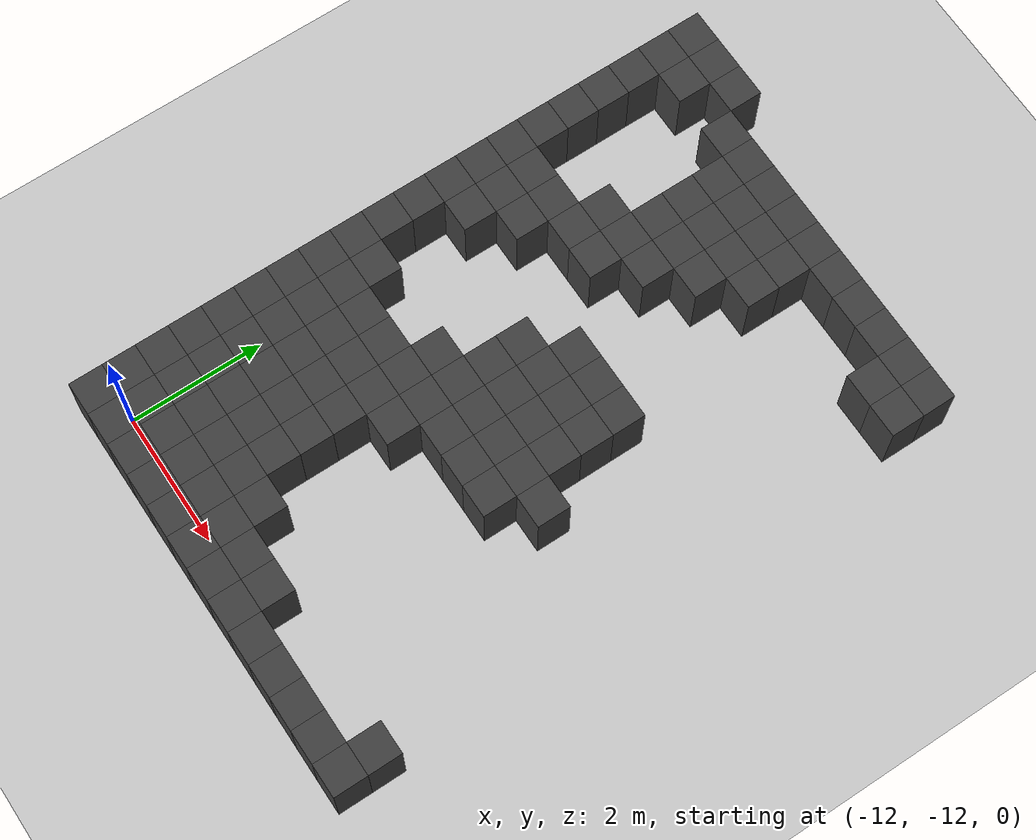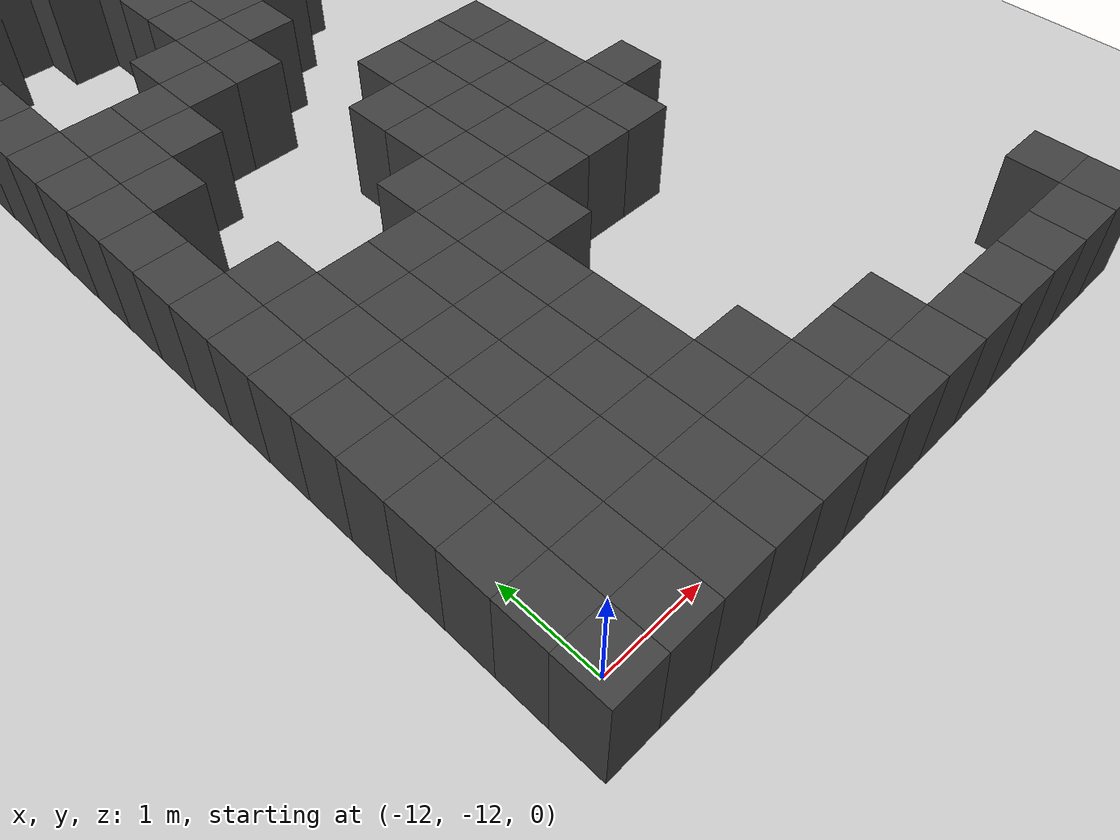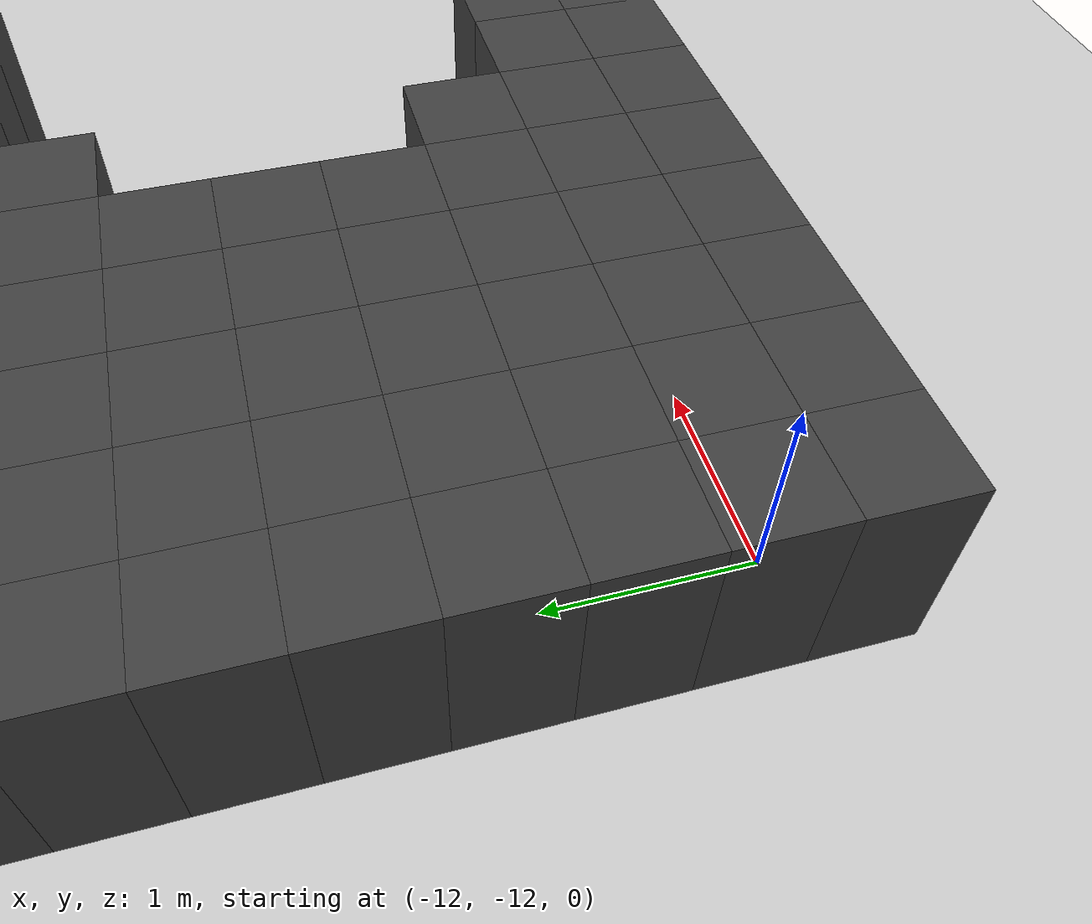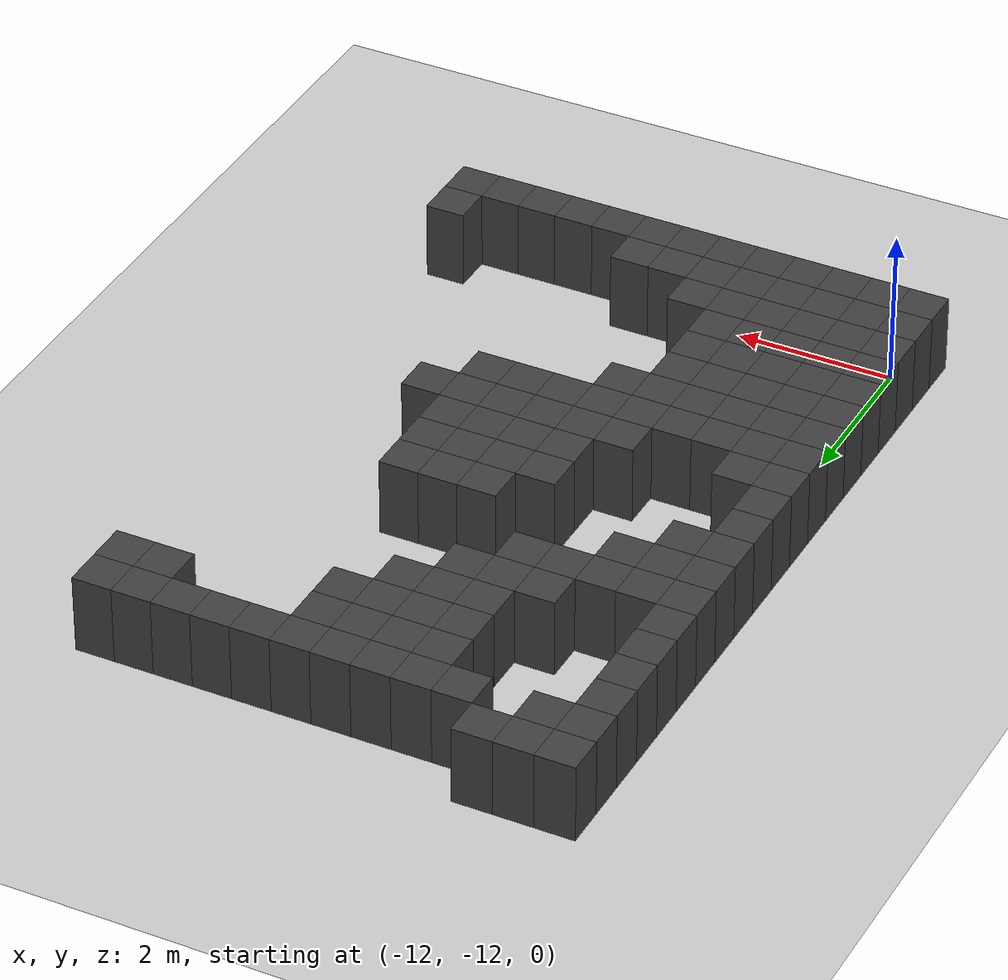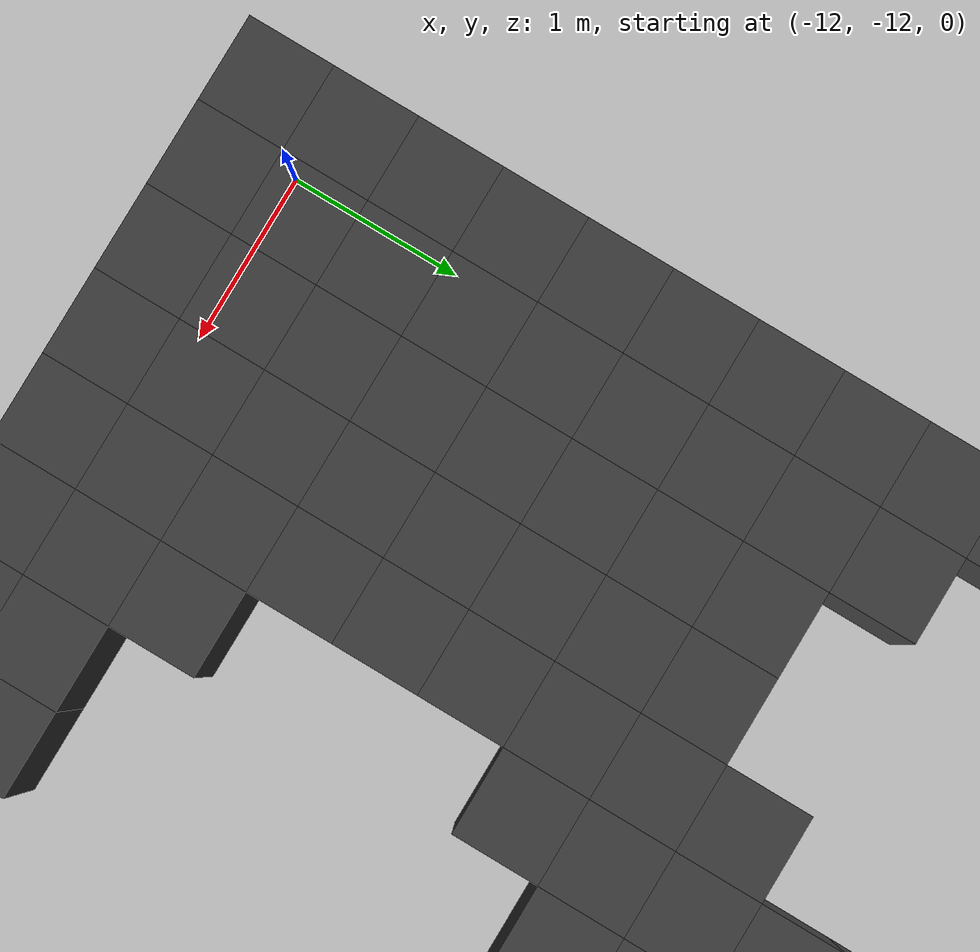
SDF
<sdf version="1.7">
 <world name="map_9082">
  <model name="ground_plane">
   <static>true</static>
   <link name="link">
    <collision name="collision">
     <geometry><plane><normal>0 0 1</normal><size>200 200</size></plane></geometry>
    </collision>
    <visual name="visual">
     <geometry><plane><normal>0 0 1</normal><size>200 200</size></plane></geometry>
     <material><ambient>0.8 0.8 0.8 1</ambient><diffuse>0.8 0.8 0.8 1</diffuse></material>
    </visual>
   </link>
  </model>
  <model name="maze_environment">
   <static>true</static>
   <link name="wall_525">
    <pose>-12.250 -2.750 0.500 0 0 0</pose>
    <collision name="col"><geometry><box><size>0.5 0.5 1.0</size></box></geometry></collision>
    <visual name="vis">
     <geometry><box><size>0.5 0.5 1.0</size></box></geometry>
     <material><ambient>0.15 0.15 0.15 1</ambient><diffuse>0.25 0.25 0.25 1</diffuse></material>
    </visual>
   </link>
   <link name="wall_526">
    <pose>-11.750 -2.750 0.500 0 0 0</pose>
    <collision name="col"><geometry><box><size>0.5 0.5 1.0</size></box></geometry></collision>
    <visual name="vis">
     <geometry><box><size>0.5 0.5 1.0</size></box></geometry>
     <material><ambient>0.15 0.15 0.15 1</ambient><diffuse>0.25 0.25 0.25 1</diffuse></material>
    </visual>
   </link>
   <link name="wall_527">
    <pose>-11.250 -2.750 0.500 0 0 0</pose>
    <collision name="col"><geometry><box><size>0.5 0.5 1.0</size></box></geometry></collision>
    <visual name="vis">
     <geometry><box><size>0.5 0.5 1.0</size></box></geometry>
     <material><ambient>0.15 0.15 0.15 1</ambient><diffuse>0.25 0.25 0.25 1</diffuse></material>
    </visual>
   </link>
   <link name="wall_545">
    <pose>-12.250 -3.250 0.500 0 0 0</pose>
    <collision name="col"><geometry><box><size>0.5 0.5 1.0</size></box></geometry></collision>
    <visual name="vis">
     <geometry><box><size>0.5 0.5 1.0</size></box></geometry>
     <material><ambient>0.15 0.15 0.15 1</ambient><diffuse>0.25 0.25 0.25 1</diffuse></material>
    </visual>
   </link>
   <link name="wall_546">
    <pose>-11.750 -3.250 0.500 0 0 0</pose>
    <collision name="col"><geometry><box><size>0.5 0.5 1.0</size></box></geometry></collision>
    <visual name="vis">
     <geometry><box><size>0.5 0.5 1.0</size></box></geometry>
     <material><ambient>0.15 0.15 0.15 1</ambient><diffuse>0.25 0.25 0.25 1</diffuse></material>
    </visual>
   </link>
   <link name="wall_547">
    <pose>-10.750 -3.250 0.500 0 0 0</pose>
    <collision name="col"><geometry><box><size>0.5 0.5 1.0</size></box></geometry></collision>
    <visual name="vis">
     <geometry><box><size>0.5 0.5 1.0</size></box></geometry>
     <material><ambient>0.15 0.15 0.15 1</ambient><diffuse>0.25 0.25 0.25 1</diffuse></material>
    </visual>
   </link>
   <link name="wall_548">
    <pose>-10.250 -3.250 0.500 0 0 0</pose>
    <collision name="col"><geometry><box><size>0.5 0.5 1.0</size></box></geometry></collision>
    <visual name="vis">
     <geometry><box><size>0.5 0.5 1.0</size></box></geometry>
     <material><ambient>0.15 0.15 0.15 1</ambient><diffuse>0.25 0.25 0.25 1</diffuse></material>
    </visual>
   </link>
   <link name="wall_549">
    <pose>-9.750 -3.250 0.500 0 0 0</pose>
    <collision name="col"><geometry><box><size>0.5 0.5 1.0</size></box></geometry></collision>
    <visual name="vis">
     <geometry><box><size>0.5 0.5 1.0</size></box></geometry>
     <material><ambient>0.15 0.15 0.15 1</ambient><diffuse>0.25 0.25 0.25 1</diffuse></material>
    </visual>
   </link>
   <link name="wall_550">
    <pose>-9.250 -3.250 0.500 0 0 0</pose>
    <collision name="col"><geometry><box><size>0.5 0.5 1.0</size></box></geometry></collision>
    <visual name="vis">
     <geometry><box><size>0.5 0.5 1.0</size></box></geometry>
     <material><ambient>0.15 0.15 0.15 1</ambient><diffuse>0.25 0.25 0.25 1</diffuse></material>
    </visual>
   </link>
   <link name="wall_551">
    <pose>-8.750 -3.250 0.500 0 0 0</pose>
    <collision name="col"><geometry><box><size>0.5 0.5 1.0</size></box></geometry></collision>
    <visual name="vis">
     <geometry><box><size>0.5 0.5 1.0</size></box></geometry>
     <material><ambient>0.15 0.15 0.15 1</ambient><diffuse>0.25 0.25 0.25 1</diffuse></material>
    </visual>
   </link>
   <link name="wall_552">
    <pose>-8.250 -3.250 0.500 0 0 0</pose>
    <collision name="col"><geometry><box><size>0.5 0.5 1.0</size></box></geometry></collision>
    <visual name="vis">
     <geometry><box><size>0.5 0.5 1.0</size></box></geometry>
     <material><ambient>0.15 0.15 0.15 1</ambient><diffuse>0.25 0.25 0.25 1</diffuse></material>
    </visual>
   </link>
   <link name="wall_553">
    <pose>-7.750 -3.250 0.500 0 0 0</pose>
    <collision name="col"><geometry><box><size>0.5 0.5 1.0</size></box></geometry></collision>
    <visual name="vis">
     <geometry><box><size>0.5 0.5 1.0</size></box></geometry>
     <material><ambient>0.15 0.15 0.15 1</ambient><diffuse>0.25 0.25 0.25 1</diffuse></material>
    </visual>
   </link>
   <link name="wall_554">
    <pose>-7.250 -3.250 0.500 0 0 0</pose>
    <collision name="col"><geometry><box><size>0.5 0.5 1.0</size></box></geometry></collision>
    <visual name="vis">
     <geometry><box><size>0.5 0.5 1.0</size></box></geometry>
     <material><ambient>0.15 0.15 0.15 1</ambient><diffuse>0.25 0.25 0.25 1</diffuse></material>
    </visual>
   </link>
   <link name="wall_555">
    <pose>-6.750 -3.250 0.500 0 0 0</pose>
    <collision name="col"><geometry><box><size>0.5 0.5 1.0</size></box></geometry></collision>
    <visual name="vis">
     <geometry><box><size>0.5 0.5 1.0</size></box></geometry>
     <material><ambient>0.15 0.15 0.15 1</ambient><diffuse>0.25 0.25 0.25 1</diffuse></material>
    </visual>
   </link>
   <link name="wall_556">
    <pose>-6.250 -3.250 0.500 0 0 0</pose>
    <collision name="col"><geometry><box><size>0.5 0.5 1.0</size></box></geometry></collision>
    <visual name="vis">
     <geometry><box><size>0.5 0.5 1.0</size></box></geometry>
     <material><ambient>0.15 0.15 0.15 1</ambient><diffuse>0.25 0.25 0.25 1</diffuse></material>
    </visual>
   </link>
   <link name="wall_568">
    <pose>-12.250 -3.750 0.500 0 0 0</pose>
    <collision name="col"><geometry><box><size>0.5 0.5 1.0</size></box></geometry></collision>
    <visual name="vis">
     <geometry><box><size>0.5 0.5 1.0</size></box></geometry>
     <material><ambient>0.15 0.15 0.15 1</ambient><diffuse>0.25 0.25 0.25 1</diffuse></material>
    </visual>
   </link>
   <link name="wall_569">
    <pose>-10.250 -3.750 0.500 0 0 0</pose>
    <collision name="col"><geometry><box><size>0.5 0.5 1.0</size></box></geometry></collision>
    <visual name="vis">
     <geometry><box><size>0.5 0.5 1.0</size></box></geometry>
     <material><ambient>0.15 0.15 0.15 1</ambient><diffuse>0.25 0.25 0.25 1</diffuse></material>
    </visual>
   </link>
   <link name="wall_570">
    <pose>-9.750 -3.750 0.500 0 0 0</pose>
    <collision name="col"><geometry><box><size>0.5 0.5 1.0</size></box></geometry></collision>
    <visual name="vis">
     <geometry><box><size>0.5 0.5 1.0</size></box></geometry>
     <material><ambient>0.15 0.15 0.15 1</ambient><diffuse>0.25 0.25 0.25 1</diffuse></material>
    </visual>
   </link>
   <link name="wall_571">
    <pose>-9.250 -3.750 0.500 0 0 0</pose>
    <collision name="col"><geometry><box><size>0.5 0.5 1.0</size></box></geometry></collision>
    <visual name="vis">
     <geometry><box><size>0.5 0.5 1.0</size></box></geometry>
     <material><ambient>0.15 0.15 0.15 1</ambient><diffuse>0.25 0.25 0.25 1</diffuse></material>
    </visual>
   </link>
   <link name="wall_572">
    <pose>-8.750 -3.750 0.500 0 0 0</pose>
    <collision name="col"><geometry><box><size>0.5 0.5 1.0</size></box></geometry></collision>
    <visual name="vis">
     <geometry><box><size>0.5 0.5 1.0</size></box></geometry>
     <material><ambient>0.15 0.15 0.15 1</ambient><diffuse>0.25 0.25 0.25 1</diffuse></material>
    </visual>
   </link>
   <link name="wall_573">
    <pose>-6.750 -3.750 0.500 0 0 0</pose>
    <collision name="col"><geometry><box><size>0.5 0.5 1.0</size></box></geometry></collision>
    <visual name="vis">
     <geometry><box><size>0.5 0.5 1.0</size></box></geometry>
     <material><ambient>0.15 0.15 0.15 1</ambient><diffuse>0.25 0.25 0.25 1</diffuse></material>
    </visual>
   </link>
   <link name="wall_574">
    <pose>-6.250 -3.750 0.500 0 0 0</pose>
    <collision name="col"><geometry><box><size>0.5 0.5 1.0</size></box></geometry></collision>
    <visual name="vis">
     <geometry><box><size>0.5 0.5 1.0</size></box></geometry>
     <material><ambient>0.15 0.15 0.15 1</ambient><diffuse>0.25 0.25 0.25 1</diffuse></material>
    </visual>
   </link>
   <link name="wall_586">
    <pose>-12.250 -4.250 0.500 0 0 0</pose>
    <collision name="col"><geometry><box><size>0.5 0.5 1.0</size></box></geometry></collision>
    <visual name="vis">
     <geometry><box><size>0.5 0.5 1.0</size></box></geometry>
     <material><ambient>0.15 0.15 0.15 1</ambient><diffuse>0.25 0.25 0.25 1</diffuse></material>
    </visual>
   </link>
   <link name="wall_587">
    <pose>-10.250 -4.250 0.500 0 0 0</pose>
    <collision name="col"><geometry><box><size>0.5 0.5 1.0</size></box></geometry></collision>
    <visual name="vis">
     <geometry><box><size>0.5 0.5 1.0</size></box></geometry>
     <material><ambient>0.15 0.15 0.15 1</ambient><diffuse>0.25 0.25 0.25 1</diffuse></material>
    </visual>
   </link>
   <link name="wall_588">
    <pose>-9.750 -4.250 0.500 0 0 0</pose>
    <collision name="col"><geometry><box><size>0.5 0.5 1.0</size></box></geometry></collision>
    <visual name="vis">
     <geometry><box><size>0.5 0.5 1.0</size></box></geometry>
     <material><ambient>0.15 0.15 0.15 1</ambient><diffuse>0.25 0.25 0.25 1</diffuse></material>
    </visual>
   </link>
   <link name="wall_589">
    <pose>-9.250 -4.250 0.500 0 0 0</pose>
    <collision name="col"><geometry><box><size>0.5 0.5 1.0</size></box></geometry></collision>
    <visual name="vis">
     <geometry><box><size>0.5 0.5 1.0</size></box></geometry>
     <material><ambient>0.15 0.15 0.15 1</ambient><diffuse>0.25 0.25 0.25 1</diffuse></material>
    </visual>
   </link>
   <link name="wall_590">
    <pose>-8.750 -4.250 0.500 0 0 0</pose>
    <collision name="col"><geometry><box><size>0.5 0.5 1.0</size></box></geometry></collision>
    <visual name="vis">
     <geometry><box><size>0.5 0.5 1.0</size></box></geometry>
     <material><ambient>0.15 0.15 0.15 1</ambient><diffuse>0.25 0.25 0.25 1</diffuse></material>
    </visual>
   </link>
   <link name="wall_607">
    <pose>-12.250 -4.750 0.500 0 0 0</pose>
    <collision name="col"><geometry><box><size>0.5 0.5 1.0</size></box></geometry></collision>
    <visual name="vis">
     <geometry><box><size>0.5 0.5 1.0</size></box></geometry>
     <material><ambient>0.15 0.15 0.15 1</ambient><diffuse>0.25 0.25 0.25 1</diffuse></material>
    </visual>
   </link>
   <link name="wall_608">
    <pose>-10.250 -4.750 0.500 0 0 0</pose>
    <collision name="col"><geometry><box><size>0.5 0.5 1.0</size></box></geometry></collision>
    <visual name="vis">
     <geometry><box><size>0.5 0.5 1.0</size></box></geometry>
     <material><ambient>0.15 0.15 0.15 1</ambient><diffuse>0.25 0.25 0.25 1</diffuse></material>
    </visual>
   </link>
   <link name="wall_609">
    <pose>-9.750 -4.750 0.500 0 0 0</pose>
    <collision name="col"><geometry><box><size>0.5 0.5 1.0</size></box></geometry></collision>
    <visual name="vis">
     <geometry><box><size>0.5 0.5 1.0</size></box></geometry>
     <material><ambient>0.15 0.15 0.15 1</ambient><diffuse>0.25 0.25 0.25 1</diffuse></material>
    </visual>
   </link>
   <link name="wall_610">
    <pose>-9.250 -4.750 0.500 0 0 0</pose>
    <collision name="col"><geometry><box><size>0.5 0.5 1.0</size></box></geometry></collision>
    <visual name="vis">
     <geometry><box><size>0.5 0.5 1.0</size></box></geometry>
     <material><ambient>0.15 0.15 0.15 1</ambient><diffuse>0.25 0.25 0.25 1</diffuse></material>
    </visual>
   </link>
   <link name="wall_622">
    <pose>-12.250 -5.250 0.500 0 0 0</pose>
    <collision name="col"><geometry><box><size>0.5 0.5 1.0</size></box></geometry></collision>
    <visual name="vis">
     <geometry><box><size>0.5 0.5 1.0</size></box></geometry>
     <material><ambient>0.15 0.15 0.15 1</ambient><diffuse>0.25 0.25 0.25 1</diffuse></material>
    </visual>
   </link>
   <link name="wall_623">
    <pose>-10.750 -5.250 0.500 0 0 0</pose>
    <collision name="col"><geometry><box><size>0.5 0.5 1.0</size></box></geometry></collision>
    <visual name="vis">
     <geometry><box><size>0.5 0.5 1.0</size></box></geometry>
     <material><ambient>0.15 0.15 0.15 1</ambient><diffuse>0.25 0.25 0.25 1</diffuse></material>
    </visual>
   </link>
   <link name="wall_624">
    <pose>-10.250 -5.250 0.500 0 0 0</pose>
    <collision name="col"><geometry><box><size>0.5 0.5 1.0</size></box></geometry></collision>
    <visual name="vis">
     <geometry><box><size>0.5 0.5 1.0</size></box></geometry>
     <material><ambient>0.15 0.15 0.15 1</ambient><diffuse>0.25 0.25 0.25 1</diffuse></material>
    </visual>
   </link>
   <link name="wall_625">
    <pose>-9.750 -5.250 0.500 0 0 0</pose>
    <collision name="col"><geometry><box><size>0.5 0.5 1.0</size></box></geometry></collision>
    <visual name="vis">
     <geometry><box><size>0.5 0.5 1.0</size></box></geometry>
     <material><ambient>0.15 0.15 0.15 1</ambient><diffuse>0.25 0.25 0.25 1</diffuse></material>
    </visual>
   </link>
   <link name="wall_632">
    <pose>-12.250 -5.750 0.500 0 0 0</pose>
    <collision name="col"><geometry><box><size>0.5 0.5 1.0</size></box></geometry></collision>
    <visual name="vis">
     <geometry><box><size>0.5 0.5 1.0</size></box></geometry>
     <material><ambient>0.15 0.15 0.15 1</ambient><diffuse>0.25 0.25 0.25 1</diffuse></material>
    </visual>
   </link>
   <link name="wall_633">
    <pose>-11.750 -5.750 0.500 0 0 0</pose>
    <collision name="col"><geometry><box><size>0.5 0.5 1.0</size></box></geometry></collision>
    <visual name="vis">
     <geometry><box><size>0.5 0.5 1.0</size></box></geometry>
     <material><ambient>0.15 0.15 0.15 1</ambient><diffuse>0.25 0.25 0.25 1</diffuse></material>
    </visual>
   </link>
   <link name="wall_634">
    <pose>-11.250 -5.750 0.500 0 0 0</pose>
    <collision name="col"><geometry><box><size>0.5 0.5 1.0</size></box></geometry></collision>
    <visual name="vis">
     <geometry><box><size>0.5 0.5 1.0</size></box></geometry>
     <material><ambient>0.15 0.15 0.15 1</ambient><diffuse>0.25 0.25 0.25 1</diffuse></material>
    </visual>
   </link>
   <link name="wall_635">
    <pose>-10.750 -5.750 0.500 0 0 0</pose>
    <collision name="col"><geometry><box><size>0.5 0.5 1.0</size></box></geometry></collision>
    <visual name="vis">
     <geometry><box><size>0.5 0.5 1.0</size></box></geometry>
     <material><ambient>0.15 0.15 0.15 1</ambient><diffuse>0.25 0.25 0.25 1</diffuse></material>
    </visual>
   </link>
   <link name="wall_636">
    <pose>-10.250 -5.750 0.500 0 0 0</pose>
    <collision name="col"><geometry><box><size>0.5 0.5 1.0</size></box></geometry></collision>
    <visual name="vis">
     <geometry><box><size>0.5 0.5 1.0</size></box></geometry>
     <material><ambient>0.15 0.15 0.15 1</ambient><diffuse>0.25 0.25 0.25 1</diffuse></material>
    </visual>
   </link>
   <link name="wall_642">
    <pose>-12.250 -6.250 0.500 0 0 0</pose>
    <collision name="col"><geometry><box><size>0.5 0.5 1.0</size></box></geometry></collision>
    <visual name="vis">
     <geometry><box><size>0.5 0.5 1.0</size></box></geometry>
     <material><ambient>0.15 0.15 0.15 1</ambient><diffuse>0.25 0.25 0.25 1</diffuse></material>
    </visual>
   </link>
   <link name="wall_643">
    <pose>-11.750 -6.250 0.500 0 0 0</pose>
    <collision name="col"><geometry><box><size>0.5 0.5 1.0</size></box></geometry></collision>
    <visual name="vis">
     <geometry><box><size>0.5 0.5 1.0</size></box></geometry>
     <material><ambient>0.15 0.15 0.15 1</ambient><diffuse>0.25 0.25 0.25 1</diffuse></material>
    </visual>
   </link>
   <link name="wall_644">
    <pose>-11.250 -6.250 0.500 0 0 0</pose>
    <collision name="col"><geometry><box><size>0.5 0.5 1.0</size></box></geometry></collision>
    <visual name="vis">
     <geometry><box><size>0.5 0.5 1.0</size></box></geometry>
     <material><ambient>0.15 0.15 0.15 1</ambient><diffuse>0.25 0.25 0.25 1</diffuse></material>
    </visual>
   </link>
   <link name="wall_655">
    <pose>-12.250 -6.750 0.500 0 0 0</pose>
    <collision name="col"><geometry><box><size>0.5 0.5 1.0</size></box></geometry></collision>
    <visual name="vis">
     <geometry><box><size>0.5 0.5 1.0</size></box></geometry>
     <material><ambient>0.15 0.15 0.15 1</ambient><diffuse>0.25 0.25 0.25 1</diffuse></material>
    </visual>
   </link>
   <link name="wall_656">
    <pose>-11.750 -6.750 0.500 0 0 0</pose>
    <collision name="col"><geometry><box><size>0.5 0.5 1.0</size></box></geometry></collision>
    <visual name="vis">
     <geometry><box><size>0.5 0.5 1.0</size></box></geometry>
     <material><ambient>0.15 0.15 0.15 1</ambient><diffuse>0.25 0.25 0.25 1</diffuse></material>
    </visual>
   </link>
   <link name="wall_657">
    <pose>-9.250 -6.750 0.500 0 0 0</pose>
    <collision name="col"><geometry><box><size>0.5 0.5 1.0</size></box></geometry></collision>
    <visual name="vis">
     <geometry><box><size>0.5 0.5 1.0</size></box></geometry>
     <material><ambient>0.15 0.15 0.15 1</ambient><diffuse>0.25 0.25 0.25 1</diffuse></material>
    </visual>
   </link>
   <link name="wall_658">
    <pose>-8.750 -6.750 0.500 0 0 0</pose>
    <collision name="col"><geometry><box><size>0.5 0.5 1.0</size></box></geometry></collision>
    <visual name="vis">
     <geometry><box><size>0.5 0.5 1.0</size></box></geometry>
     <material><ambient>0.15 0.15 0.15 1</ambient><diffuse>0.25 0.25 0.25 1</diffuse></material>
    </visual>
   </link>
   <link name="wall_659">
    <pose>-8.250 -6.750 0.500 0 0 0</pose>
    <collision name="col"><geometry><box><size>0.5 0.5 1.0</size></box></geometry></collision>
    <visual name="vis">
     <geometry><box><size>0.5 0.5 1.0</size></box></geometry>
     <material><ambient>0.15 0.15 0.15 1</ambient><diffuse>0.25 0.25 0.25 1</diffuse></material>
    </visual>
   </link>
   <link name="wall_669">
    <pose>-12.250 -7.250 0.500 0 0 0</pose>
    <collision name="col"><geometry><box><size>0.5 0.5 1.0</size></box></geometry></collision>
    <visual name="vis">
     <geometry><box><size>0.5 0.5 1.0</size></box></geometry>
     <material><ambient>0.15 0.15 0.15 1</ambient><diffuse>0.25 0.25 0.25 1</diffuse></material>
    </visual>
   </link>
   <link name="wall_670">
    <pose>-9.750 -7.250 0.500 0 0 0</pose>
    <collision name="col"><geometry><box><size>0.5 0.5 1.0</size></box></geometry></collision>
    <visual name="vis">
     <geometry><box><size>0.5 0.5 1.0</size></box></geometry>
     <material><ambient>0.15 0.15 0.15 1</ambient><diffuse>0.25 0.25 0.25 1</diffuse></material>
    </visual>
   </link>
   <link name="wall_671">
    <pose>-9.250 -7.250 0.500 0 0 0</pose>
    <collision name="col"><geometry><box><size>0.5 0.5 1.0</size></box></geometry></collision>
    <visual name="vis">
     <geometry><box><size>0.5 0.5 1.0</size></box></geometry>
     <material><ambient>0.15 0.15 0.15 1</ambient><diffuse>0.25 0.25 0.25 1</diffuse></material>
    </visual>
   </link>
   <link name="wall_672">
    <pose>-8.750 -7.250 0.500 0 0 0</pose>
    <collision name="col"><geometry><box><size>0.5 0.5 1.0</size></box></geometry></collision>
    <visual name="vis">
     <geometry><box><size>0.5 0.5 1.0</size></box></geometry>
     <material><ambient>0.15 0.15 0.15 1</ambient><diffuse>0.25 0.25 0.25 1</diffuse></material>
    </visual>
   </link>
   <link name="wall_673">
    <pose>-8.250 -7.250 0.500 0 0 0</pose>
    <collision name="col"><geometry><box><size>0.5 0.5 1.0</size></box></geometry></collision>
    <visual name="vis">
     <geometry><box><size>0.5 0.5 1.0</size></box></geometry>
     <material><ambient>0.15 0.15 0.15 1</ambient><diffuse>0.25 0.25 0.25 1</diffuse></material>
    </visual>
   </link>
   <link name="wall_680">
    <pose>-12.250 -7.750 0.500 0 0 0</pose>
    <collision name="col"><geometry><box><size>0.5 0.5 1.0</size></box></geometry></collision>
    <visual name="vis">
     <geometry><box><size>0.5 0.5 1.0</size></box></geometry>
     <material><ambient>0.15 0.15 0.15 1</ambient><diffuse>0.25 0.25 0.25 1</diffuse></material>
    </visual>
   </link>
   <link name="wall_681">
    <pose>-9.750 -7.750 0.500 0 0 0</pose>
    <collision name="col"><geometry><box><size>0.5 0.5 1.0</size></box></geometry></collision>
    <visual name="vis">
     <geometry><box><size>0.5 0.5 1.0</size></box></geometry>
     <material><ambient>0.15 0.15 0.15 1</ambient><diffuse>0.25 0.25 0.25 1</diffuse></material>
    </visual>
   </link>
   <link name="wall_682">
    <pose>-9.250 -7.750 0.500 0 0 0</pose>
    <collision name="col"><geometry><box><size>0.5 0.5 1.0</size></box></geometry></collision>
    <visual name="vis">
     <geometry><box><size>0.5 0.5 1.0</size></box></geometry>
     <material><ambient>0.15 0.15 0.15 1</ambient><diffuse>0.25 0.25 0.25 1</diffuse></material>
    </visual>
   </link>
   <link name="wall_683">
    <pose>-8.750 -7.750 0.500 0 0 0</pose>
    <collision name="col"><geometry><box><size>0.5 0.5 1.0</size></box></geometry></collision>
    <visual name="vis">
     <geometry><box><size>0.5 0.5 1.0</size></box></geometry>
     <material><ambient>0.15 0.15 0.15 1</ambient><diffuse>0.25 0.25 0.25 1</diffuse></material>
    </visual>
   </link>
   <link name="wall_684">
    <pose>-8.250 -7.750 0.500 0 0 0</pose>
    <collision name="col"><geometry><box><size>0.5 0.5 1.0</size></box></geometry></collision>
    <visual name="vis">
     <geometry><box><size>0.5 0.5 1.0</size></box></geometry>
     <material><ambient>0.15 0.15 0.15 1</ambient><diffuse>0.25 0.25 0.25 1</diffuse></material>
    </visual>
   </link>
   <link name="wall_690">
    <pose>-12.250 -8.250 0.500 0 0 0</pose>
    <collision name="col"><geometry><box><size>0.5 0.5 1.0</size></box></geometry></collision>
    <visual name="vis">
     <geometry><box><size>0.5 0.5 1.0</size></box></geometry>
     <material><ambient>0.15 0.15 0.15 1</ambient><diffuse>0.25 0.25 0.25 1</diffuse></material>
    </visual>
   </link>
   <link name="wall_691">
    <pose>-11.750 -8.250 0.500 0 0 0</pose>
    <collision name="col"><geometry><box><size>0.5 0.5 1.0</size></box></geometry></collision>
    <visual name="vis">
     <geometry><box><size>0.5 0.5 1.0</size></box></geometry>
     <material><ambient>0.15 0.15 0.15 1</ambient><diffuse>0.25 0.25 0.25 1</diffuse></material>
    </visual>
   </link>
   <link name="wall_692">
    <pose>-10.250 -8.250 0.500 0 0 0</pose>
    <collision name="col"><geometry><box><size>0.5 0.5 1.0</size></box></geometry></collision>
    <visual name="vis">
     <geometry><box><size>0.5 0.5 1.0</size></box></geometry>
     <material><ambient>0.15 0.15 0.15 1</ambient><diffuse>0.25 0.25 0.25 1</diffuse></material>
    </visual>
   </link>
   <link name="wall_693">
    <pose>-9.750 -8.250 0.500 0 0 0</pose>
    <collision name="col"><geometry><box><size>0.5 0.5 1.0</size></box></geometry></collision>
    <visual name="vis">
     <geometry><box><size>0.5 0.5 1.0</size></box></geometry>
     <material><ambient>0.15 0.15 0.15 1</ambient><diffuse>0.25 0.25 0.25 1</diffuse></material>
    </visual>
   </link>
   <link name="wall_694">
    <pose>-9.250 -8.250 0.500 0 0 0</pose>
    <collision name="col"><geometry><box><size>0.5 0.5 1.0</size></box></geometry></collision>
    <visual name="vis">
     <geometry><box><size>0.5 0.5 1.0</size></box></geometry>
     <material><ambient>0.15 0.15 0.15 1</ambient><diffuse>0.25 0.25 0.25 1</diffuse></material>
    </visual>
   </link>
   <link name="wall_695">
    <pose>-8.750 -8.250 0.500 0 0 0</pose>
    <collision name="col"><geometry><box><size>0.5 0.5 1.0</size></box></geometry></collision>
    <visual name="vis">
     <geometry><box><size>0.5 0.5 1.0</size></box></geometry>
     <material><ambient>0.15 0.15 0.15 1</ambient><diffuse>0.25 0.25 0.25 1</diffuse></material>
    </visual>
   </link>
   <link name="wall_696">
    <pose>-8.250 -8.250 0.500 0 0 0</pose>
    <collision name="col"><geometry><box><size>0.5 0.5 1.0</size></box></geometry></collision>
    <visual name="vis">
     <geometry><box><size>0.5 0.5 1.0</size></box></geometry>
     <material><ambient>0.15 0.15 0.15 1</ambient><diffuse>0.25 0.25 0.25 1</diffuse></material>
    </visual>
   </link>
   <link name="wall_697">
    <pose>-7.750 -8.250 0.500 0 0 0</pose>
    <collision name="col"><geometry><box><size>0.5 0.5 1.0</size></box></geometry></collision>
    <visual name="vis">
     <geometry><box><size>0.5 0.5 1.0</size></box></geometry>
     <material><ambient>0.15 0.15 0.15 1</ambient><diffuse>0.25 0.25 0.25 1</diffuse></material>
    </visual>
   </link>
   <link name="wall_704">
    <pose>-12.250 -8.750 0.500 0 0 0</pose>
    <collision name="col"><geometry><box><size>0.5 0.5 1.0</size></box></geometry></collision>
    <visual name="vis">
     <geometry><box><size>0.5 0.5 1.0</size></box></geometry>
     <material><ambient>0.15 0.15 0.15 1</ambient><diffuse>0.25 0.25 0.25 1</diffuse></material>
    </visual>
   </link>
   <link name="wall_705">
    <pose>-11.750 -8.750 0.500 0 0 0</pose>
    <collision name="col"><geometry><box><size>0.5 0.5 1.0</size></box></geometry></collision>
    <visual name="vis">
     <geometry><box><size>0.5 0.5 1.0</size></box></geometry>
     <material><ambient>0.15 0.15 0.15 1</ambient><diffuse>0.25 0.25 0.25 1</diffuse></material>
    </visual>
   </link>
   <link name="wall_706">
    <pose>-11.250 -8.750 0.500 0 0 0</pose>
    <collision name="col"><geometry><box><size>0.5 0.5 1.0</size></box></geometry></collision>
    <visual name="vis">
     <geometry><box><size>0.5 0.5 1.0</size></box></geometry>
     <material><ambient>0.15 0.15 0.15 1</ambient><diffuse>0.25 0.25 0.25 1</diffuse></material>
    </visual>
   </link>
   <link name="wall_707">
    <pose>-10.750 -8.750 0.500 0 0 0</pose>
    <collision name="col"><geometry><box><size>0.5 0.5 1.0</size></box></geometry></collision>
    <visual name="vis">
     <geometry><box><size>0.5 0.5 1.0</size></box></geometry>
     <material><ambient>0.15 0.15 0.15 1</ambient><diffuse>0.25 0.25 0.25 1</diffuse></material>
    </visual>
   </link>
   <link name="wall_708">
    <pose>-10.250 -8.750 0.500 0 0 0</pose>
    <collision name="col"><geometry><box><size>0.5 0.5 1.0</size></box></geometry></collision>
    <visual name="vis">
     <geometry><box><size>0.5 0.5 1.0</size></box></geometry>
     <material><ambient>0.15 0.15 0.15 1</ambient><diffuse>0.25 0.25 0.25 1</diffuse></material>
    </visual>
   </link>
   <link name="wall_709">
    <pose>-9.750 -8.750 0.500 0 0 0</pose>
    <collision name="col"><geometry><box><size>0.5 0.5 1.0</size></box></geometry></collision>
    <visual name="vis">
     <geometry><box><size>0.5 0.5 1.0</size></box></geometry>
     <material><ambient>0.15 0.15 0.15 1</ambient><diffuse>0.25 0.25 0.25 1</diffuse></material>
    </visual>
   </link>
   <link name="wall_710">
    <pose>-9.250 -8.750 0.500 0 0 0</pose>
    <collision name="col"><geometry><box><size>0.5 0.5 1.0</size></box></geometry></collision>
    <visual name="vis">
     <geometry><box><size>0.5 0.5 1.0</size></box></geometry>
     <material><ambient>0.15 0.15 0.15 1</ambient><diffuse>0.25 0.25 0.25 1</diffuse></material>
    </visual>
   </link>
   <link name="wall_711">
    <pose>-8.750 -8.750 0.500 0 0 0</pose>
    <collision name="col"><geometry><box><size>0.5 0.5 1.0</size></box></geometry></collision>
    <visual name="vis">
     <geometry><box><size>0.5 0.5 1.0</size></box></geometry>
     <material><ambient>0.15 0.15 0.15 1</ambient><diffuse>0.25 0.25 0.25 1</diffuse></material>
    </visual>
   </link>
   <link name="wall_712">
    <pose>-8.250 -8.750 0.500 0 0 0</pose>
    <collision name="col"><geometry><box><size>0.5 0.5 1.0</size></box></geometry></collision>
    <visual name="vis">
     <geometry><box><size>0.5 0.5 1.0</size></box></geometry>
     <material><ambient>0.15 0.15 0.15 1</ambient><diffuse>0.25 0.25 0.25 1</diffuse></material>
    </visual>
   </link>
   <link name="wall_718">
    <pose>-12.250 -9.250 0.500 0 0 0</pose>
    <collision name="col"><geometry><box><size>0.5 0.5 1.0</size></box></geometry></collision>
    <visual name="vis">
     <geometry><box><size>0.5 0.5 1.0</size></box></geometry>
     <material><ambient>0.15 0.15 0.15 1</ambient><diffuse>0.25 0.25 0.25 1</diffuse></material>
    </visual>
   </link>
   <link name="wall_719">
    <pose>-11.750 -9.250 0.500 0 0 0</pose>
    <collision name="col"><geometry><box><size>0.5 0.5 1.0</size></box></geometry></collision>
    <visual name="vis">
     <geometry><box><size>0.5 0.5 1.0</size></box></geometry>
     <material><ambient>0.15 0.15 0.15 1</ambient><diffuse>0.25 0.25 0.25 1</diffuse></material>
    </visual>
   </link>
   <link name="wall_720">
    <pose>-11.250 -9.250 0.500 0 0 0</pose>
    <collision name="col"><geometry><box><size>0.5 0.5 1.0</size></box></geometry></collision>
    <visual name="vis">
     <geometry><box><size>0.5 0.5 1.0</size></box></geometry>
     <material><ambient>0.15 0.15 0.15 1</ambient><diffuse>0.25 0.25 0.25 1</diffuse></material>
    </visual>
   </link>
   <link name="wall_721">
    <pose>-10.750 -9.250 0.500 0 0 0</pose>
    <collision name="col"><geometry><box><size>0.5 0.5 1.0</size></box></geometry></collision>
    <visual name="vis">
     <geometry><box><size>0.5 0.5 1.0</size></box></geometry>
     <material><ambient>0.15 0.15 0.15 1</ambient><diffuse>0.25 0.25 0.25 1</diffuse></material>
    </visual>
   </link>
   <link name="wall_722">
    <pose>-10.250 -9.250 0.500 0 0 0</pose>
    <collision name="col"><geometry><box><size>0.5 0.5 1.0</size></box></geometry></collision>
    <visual name="vis">
     <geometry><box><size>0.5 0.5 1.0</size></box></geometry>
     <material><ambient>0.15 0.15 0.15 1</ambient><diffuse>0.25 0.25 0.25 1</diffuse></material>
    </visual>
   </link>
   <link name="wall_723">
    <pose>-9.750 -9.250 0.500 0 0 0</pose>
    <collision name="col"><geometry><box><size>0.5 0.5 1.0</size></box></geometry></collision>
    <visual name="vis">
     <geometry><box><size>0.5 0.5 1.0</size></box></geometry>
     <material><ambient>0.15 0.15 0.15 1</ambient><diffuse>0.25 0.25 0.25 1</diffuse></material>
    </visual>
   </link>
   <link name="wall_730">
    <pose>-12.250 -9.750 0.500 0 0 0</pose>
    <collision name="col"><geometry><box><size>0.5 0.5 1.0</size></box></geometry></collision>
    <visual name="vis">
     <geometry><box><size>0.5 0.5 1.0</size></box></geometry>
     <material><ambient>0.15 0.15 0.15 1</ambient><diffuse>0.25 0.25 0.25 1</diffuse></material>
    </visual>
   </link>
   <link name="wall_731">
    <pose>-11.750 -9.750 0.500 0 0 0</pose>
    <collision name="col"><geometry><box><size>0.5 0.5 1.0</size></box></geometry></collision>
    <visual name="vis">
     <geometry><box><size>0.5 0.5 1.0</size></box></geometry>
     <material><ambient>0.15 0.15 0.15 1</ambient><diffuse>0.25 0.25 0.25 1</diffuse></material>
    </visual>
   </link>
   <link name="wall_732">
    <pose>-11.250 -9.750 0.500 0 0 0</pose>
    <collision name="col"><geometry><box><size>0.5 0.5 1.0</size></box></geometry></collision>
    <visual name="vis">
     <geometry><box><size>0.5 0.5 1.0</size></box></geometry>
     <material><ambient>0.15 0.15 0.15 1</ambient><diffuse>0.25 0.25 0.25 1</diffuse></material>
    </visual>
   </link>
   <link name="wall_733">
    <pose>-10.750 -9.750 0.500 0 0 0</pose>
    <collision name="col"><geometry><box><size>0.5 0.5 1.0</size></box></geometry></collision>
    <visual name="vis">
     <geometry><box><size>0.5 0.5 1.0</size></box></geometry>
     <material><ambient>0.15 0.15 0.15 1</ambient><diffuse>0.25 0.25 0.25 1</diffuse></material>
    </visual>
   </link>
   <link name="wall_734">
    <pose>-10.250 -9.750 0.500 0 0 0</pose>
    <collision name="col"><geometry><box><size>0.5 0.5 1.0</size></box></geometry></collision>
    <visual name="vis">
     <geometry><box><size>0.5 0.5 1.0</size></box></geometry>
     <material><ambient>0.15 0.15 0.15 1</ambient><diffuse>0.25 0.25 0.25 1</diffuse></material>
    </visual>
   </link>
   <link name="wall_748">
    <pose>-12.250 -10.250 0.500 0 0 0</pose>
    <collision name="col"><geometry><box><size>0.5 0.5 1.0</size></box></geometry></collision>
    <visual name="vis">
     <geometry><box><size>0.5 0.5 1.0</size></box></geometry>
     <material><ambient>0.15 0.15 0.15 1</ambient><diffuse>0.25 0.25 0.25 1</diffuse></material>
    </visual>
   </link>
   <link name="wall_749">
    <pose>-11.750 -10.250 0.500 0 0 0</pose>
    <collision name="col"><geometry><box><size>0.5 0.5 1.0</size></box></geometry></collision>
    <visual name="vis">
     <geometry><box><size>0.5 0.5 1.0</size></box></geometry>
     <material><ambient>0.15 0.15 0.15 1</ambient><diffuse>0.25 0.25 0.25 1</diffuse></material>
    </visual>
   </link>
   <link name="wall_750">
    <pose>-11.250 -10.250 0.500 0 0 0</pose>
    <collision name="col"><geometry><box><size>0.5 0.5 1.0</size></box></geometry></collision>
    <visual name="vis">
     <geometry><box><size>0.5 0.5 1.0</size></box></geometry>
     <material><ambient>0.15 0.15 0.15 1</ambient><diffuse>0.25 0.25 0.25 1</diffuse></material>
    </visual>
   </link>
   <link name="wall_751">
    <pose>-10.750 -10.250 0.500 0 0 0</pose>
    <collision name="col"><geometry><box><size>0.5 0.5 1.0</size></box></geometry></collision>
    <visual name="vis">
     <geometry><box><size>0.5 0.5 1.0</size></box></geometry>
     <material><ambient>0.15 0.15 0.15 1</ambient><diffuse>0.25 0.25 0.25 1</diffuse></material>
    </visual>
   </link>
   <link name="wall_752">
    <pose>-10.250 -10.250 0.500 0 0 0</pose>
    <collision name="col"><geometry><box><size>0.5 0.5 1.0</size></box></geometry></collision>
    <visual name="vis">
     <geometry><box><size>0.5 0.5 1.0</size></box></geometry>
     <material><ambient>0.15 0.15 0.15 1</ambient><diffuse>0.25 0.25 0.25 1</diffuse></material>
    </visual>
   </link>
   <link name="wall_766">
    <pose>-12.250 -10.750 0.500 0 0 0</pose>
    <collision name="col"><geometry><box><size>0.5 0.5 1.0</size></box></geometry></collision>
    <visual name="vis">
     <geometry><box><size>0.5 0.5 1.0</size></box></geometry>
     <material><ambient>0.15 0.15 0.15 1</ambient><diffuse>0.25 0.25 0.25 1</diffuse></material>
    </visual>
   </link>
   <link name="wall_767">
    <pose>-11.750 -10.750 0.500 0 0 0</pose>
    <collision name="col"><geometry><box><size>0.5 0.5 1.0</size></box></geometry></collision>
    <visual name="vis">
     <geometry><box><size>0.5 0.5 1.0</size></box></geometry>
     <material><ambient>0.15 0.15 0.15 1</ambient><diffuse>0.25 0.25 0.25 1</diffuse></material>
    </visual>
   </link>
   <link name="wall_768">
    <pose>-11.250 -10.750 0.500 0 0 0</pose>
    <collision name="col"><geometry><box><size>0.5 0.5 1.0</size></box></geometry></collision>
    <visual name="vis">
     <geometry><box><size>0.5 0.5 1.0</size></box></geometry>
     <material><ambient>0.15 0.15 0.15 1</ambient><diffuse>0.25 0.25 0.25 1</diffuse></material>
    </visual>
   </link>
   <link name="wall_769">
    <pose>-10.750 -10.750 0.500 0 0 0</pose>
    <collision name="col"><geometry><box><size>0.5 0.5 1.0</size></box></geometry></collision>
    <visual name="vis">
     <geometry><box><size>0.5 0.5 1.0</size></box></geometry>
     <material><ambient>0.15 0.15 0.15 1</ambient><diffuse>0.25 0.25 0.25 1</diffuse></material>
    </visual>
   </link>
   <link name="wall_770">
    <pose>-10.250 -10.750 0.500 0 0 0</pose>
    <collision name="col"><geometry><box><size>0.5 0.5 1.0</size></box></geometry></collision>
    <visual name="vis">
     <geometry><box><size>0.5 0.5 1.0</size></box></geometry>
     <material><ambient>0.15 0.15 0.15 1</ambient><diffuse>0.25 0.25 0.25 1</diffuse></material>
    </visual>
   </link>
   <link name="wall_782">
    <pose>-12.250 -11.250 0.500 0 0 0</pose>
    <collision name="col"><geometry><box><size>0.5 0.5 1.0</size></box></geometry></collision>
    <visual name="vis">
     <geometry><box><size>0.5 0.5 1.0</size></box></geometry>
     <material><ambient>0.15 0.15 0.15 1</ambient><diffuse>0.25 0.25 0.25 1</diffuse></material>
    </visual>
   </link>
   <link name="wall_783">
    <pose>-11.750 -11.250 0.500 0 0 0</pose>
    <collision name="col"><geometry><box><size>0.5 0.5 1.0</size></box></geometry></collision>
    <visual name="vis">
     <geometry><box><size>0.5 0.5 1.0</size></box></geometry>
     <material><ambient>0.15 0.15 0.15 1</ambient><diffuse>0.25 0.25 0.25 1</diffuse></material>
    </visual>
   </link>
   <link name="wall_784">
    <pose>-11.250 -11.250 0.500 0 0 0</pose>
    <collision name="col"><geometry><box><size>0.5 0.5 1.0</size></box></geometry></collision>
    <visual name="vis">
     <geometry><box><size>0.5 0.5 1.0</size></box></geometry>
     <material><ambient>0.15 0.15 0.15 1</ambient><diffuse>0.25 0.25 0.25 1</diffuse></material>
    </visual>
   </link>
   <link name="wall_785">
    <pose>-10.750 -11.250 0.500 0 0 0</pose>
    <collision name="col"><geometry><box><size>0.5 0.5 1.0</size></box></geometry></collision>
    <visual name="vis">
     <geometry><box><size>0.5 0.5 1.0</size></box></geometry>
     <material><ambient>0.15 0.15 0.15 1</ambient><diffuse>0.25 0.25 0.25 1</diffuse></material>
    </visual>
   </link>
   <link name="wall_786">
    <pose>-10.250 -11.250 0.500 0 0 0</pose>
    <collision name="col"><geometry><box><size>0.5 0.5 1.0</size></box></geometry></collision>
    <visual name="vis">
     <geometry><box><size>0.5 0.5 1.0</size></box></geometry>
     <material><ambient>0.15 0.15 0.15 1</ambient><diffuse>0.25 0.25 0.25 1</diffuse></material>
    </visual>
   </link>
   <link name="wall_787">
    <pose>-9.750 -11.250 0.500 0 0 0</pose>
    <collision name="col"><geometry><box><size>0.5 0.5 1.0</size></box></geometry></collision>
    <visual name="vis">
     <geometry><box><size>0.5 0.5 1.0</size></box></geometry>
     <material><ambient>0.15 0.15 0.15 1</ambient><diffuse>0.25 0.25 0.25 1</diffuse></material>
    </visual>
   </link>
   <link name="wall_798">
    <pose>-12.250 -11.750 0.500 0 0 0</pose>
    <collision name="col"><geometry><box><size>0.5 0.5 1.0</size></box></geometry></collision>
    <visual name="vis">
     <geometry><box><size>0.5 0.5 1.0</size></box></geometry>
     <material><ambient>0.15 0.15 0.15 1</ambient><diffuse>0.25 0.25 0.25 1</diffuse></material>
    </visual>
   </link>
   <link name="wall_799">
    <pose>-11.750 -11.750 0.500 0 0 0</pose>
    <collision name="col"><geometry><box><size>0.5 0.5 1.0</size></box></geometry></collision>
    <visual name="vis">
     <geometry><box><size>0.5 0.5 1.0</size></box></geometry>
     <material><ambient>0.15 0.15 0.15 1</ambient><diffuse>0.25 0.25 0.25 1</diffuse></material>
    </visual>
   </link>
   <link name="wall_800">
    <pose>-11.250 -11.750 0.500 0 0 0</pose>
    <collision name="col"><geometry><box><size>0.5 0.5 1.0</size></box></geometry></collision>
    <visual name="vis">
     <geometry><box><size>0.5 0.5 1.0</size></box></geometry>
     <material><ambient>0.15 0.15 0.15 1</ambient><diffuse>0.25 0.25 0.25 1</diffuse></material>
    </visual>
   </link>
   <link name="wall_801">
    <pose>-10.750 -11.750 0.500 0 0 0</pose>
    <collision name="col"><geometry><box><size>0.5 0.5 1.0</size></box></geometry></collision>
    <visual name="vis">
     <geometry><box><size>0.5 0.5 1.0</size></box></geometry>
     <material><ambient>0.15 0.15 0.15 1</ambient><diffuse>0.25 0.25 0.25 1</diffuse></material>
    </visual>
   </link>
   <link name="wall_802">
    <pose>-10.250 -11.750 0.500 0 0 0</pose>
    <collision name="col"><geometry><box><size>0.5 0.5 1.0</size></box></geometry></collision>
    <visual name="vis">
     <geometry><box><size>0.5 0.5 1.0</size></box></geometry>
     <material><ambient>0.15 0.15 0.15 1</ambient><diffuse>0.25 0.25 0.25 1</diffuse></material>
    </visual>
   </link>
   <link name="wall_803">
    <pose>-9.750 -11.750 0.500 0 0 0</pose>
    <collision name="col"><geometry><box><size>0.5 0.5 1.0</size></box></geometry></collision>
    <visual name="vis">
     <geometry><box><size>0.5 0.5 1.0</size></box></geometry>
     <material><ambient>0.15 0.15 0.15 1</ambient><diffuse>0.25 0.25 0.25 1</diffuse></material>
    </visual>
   </link>
   <link name="wall_804">
    <pose>-9.250 -11.750 0.500 0 0 0</pose>
    <collision name="col"><geometry><box><size>0.5 0.5 1.0</size></box></geometry></collision>
    <visual name="vis">
     <geometry><box><size>0.5 0.5 1.0</size></box></geometry>
     <material><ambient>0.15 0.15 0.15 1</ambient><diffuse>0.25 0.25 0.25 1</diffuse></material>
    </visual>
   </link>
   <link name="wall_805">
    <pose>-8.750 -11.750 0.500 0 0 0</pose>
    <collision name="col"><geometry><box><size>0.5 0.5 1.0</size></box></geometry></collision>
    <visual name="vis">
     <geometry><box><size>0.5 0.5 1.0</size></box></geometry>
     <material><ambient>0.15 0.15 0.15 1</ambient><diffuse>0.25 0.25 0.25 1</diffuse></material>
    </visual>
   </link>
   <link name="wall_806">
    <pose>-6.250 -11.750 0.500 0 0 0</pose>
    <collision name="col"><geometry><box><size>0.5 0.5 1.0</size></box></geometry></collision>
    <visual name="vis">
     <geometry><box><size>0.5 0.5 1.0</size></box></geometry>
     <material><ambient>0.15 0.15 0.15 1</ambient><diffuse>0.25 0.25 0.25 1</diffuse></material>
    </visual>
   </link>
   <link name="wall_821">
    <pose>-12.250 -12.250 0.500 0 0 0</pose>
    <collision name="col"><geometry><box><size>0.5 0.5 1.0</size></box></geometry></collision>
    <visual name="vis">
     <geometry><box><size>0.5 0.5 1.0</size></box></geometry>
     <material><ambient>0.15 0.15 0.15 1</ambient><diffuse>0.25 0.25 0.25 1</diffuse></material>
    </visual>
   </link>
   <link name="wall_822">
    <pose>-11.750 -12.250 0.500 0 0 0</pose>
    <collision name="col"><geometry><box><size>0.5 0.5 1.0</size></box></geometry></collision>
    <visual name="vis">
     <geometry><box><size>0.5 0.5 1.0</size></box></geometry>
     <material><ambient>0.15 0.15 0.15 1</ambient><diffuse>0.25 0.25 0.25 1</diffuse></material>
    </visual>
   </link>
   <link name="wall_823">
    <pose>-11.250 -12.250 0.500 0 0 0</pose>
    <collision name="col"><geometry><box><size>0.5 0.5 1.0</size></box></geometry></collision>
    <visual name="vis">
     <geometry><box><size>0.5 0.5 1.0</size></box></geometry>
     <material><ambient>0.15 0.15 0.15 1</ambient><diffuse>0.25 0.25 0.25 1</diffuse></material>
    </visual>
   </link>
   <link name="wall_824">
    <pose>-10.750 -12.250 0.500 0 0 0</pose>
    <collision name="col"><geometry><box><size>0.5 0.5 1.0</size></box></geometry></collision>
    <visual name="vis">
     <geometry><box><size>0.5 0.5 1.0</size></box></geometry>
     <material><ambient>0.15 0.15 0.15 1</ambient><diffuse>0.25 0.25 0.25 1</diffuse></material>
    </visual>
   </link>
   <link name="wall_825">
    <pose>-10.250 -12.250 0.500 0 0 0</pose>
    <collision name="col"><geometry><box><size>0.5 0.5 1.0</size></box></geometry></collision>
    <visual name="vis">
     <geometry><box><size>0.5 0.5 1.0</size></box></geometry>
     <material><ambient>0.15 0.15 0.15 1</ambient><diffuse>0.25 0.25 0.25 1</diffuse></material>
    </visual>
   </link>
   <link name="wall_826">
    <pose>-9.750 -12.250 0.500 0 0 0</pose>
    <collision name="col"><geometry><box><size>0.5 0.5 1.0</size></box></geometry></collision>
    <visual name="vis">
     <geometry><box><size>0.5 0.5 1.0</size></box></geometry>
     <material><ambient>0.15 0.15 0.15 1</ambient><diffuse>0.25 0.25 0.25 1</diffuse></material>
    </visual>
   </link>
   <link name="wall_827">
    <pose>-9.250 -12.250 0.500 0 0 0</pose>
    <collision name="col"><geometry><box><size>0.5 0.5 1.0</size></box></geometry></collision>
    <visual name="vis">
     <geometry><box><size>0.5 0.5 1.0</size></box></geometry>
     <material><ambient>0.15 0.15 0.15 1</ambient><diffuse>0.25 0.25 0.25 1</diffuse></material>
    </visual>
   </link>
   <link name="wall_828">
    <pose>-8.750 -12.250 0.500 0 0 0</pose>
    <collision name="col"><geometry><box><size>0.5 0.5 1.0</size></box></geometry></collision>
    <visual name="vis">
     <geometry><box><size>0.5 0.5 1.0</size></box></geometry>
     <material><ambient>0.15 0.15 0.15 1</ambient><diffuse>0.25 0.25 0.25 1</diffuse></material>
    </visual>
   </link>
   <link name="wall_829">
    <pose>-8.250 -12.250 0.500 0 0 0</pose>
    <collision name="col"><geometry><box><size>0.5 0.5 1.0</size></box></geometry></collision>
    <visual name="vis">
     <geometry><box><size>0.5 0.5 1.0</size></box></geometry>
     <material><ambient>0.15 0.15 0.15 1</ambient><diffuse>0.25 0.25 0.25 1</diffuse></material>
    </visual>
   </link>
   <link name="wall_830">
    <pose>-7.750 -12.250 0.500 0 0 0</pose>
    <collision name="col"><geometry><box><size>0.5 0.5 1.0</size></box></geometry></collision>
    <visual name="vis">
     <geometry><box><size>0.5 0.5 1.0</size></box></geometry>
     <material><ambient>0.15 0.15 0.15 1</ambient><diffuse>0.25 0.25 0.25 1</diffuse></material>
    </visual>
   </link>
   <link name="wall_831">
    <pose>-7.250 -12.250 0.500 0 0 0</pose>
    <collision name="col"><geometry><box><size>0.5 0.5 1.0</size></box></geometry></collision>
    <visual name="vis">
     <geometry><box><size>0.5 0.5 1.0</size></box></geometry>
     <material><ambient>0.15 0.15 0.15 1</ambient><diffuse>0.25 0.25 0.25 1</diffuse></material>
    </visual>
   </link>
   <link name="wall_832">
    <pose>-6.750 -12.250 0.500 0 0 0</pose>
    <collision name="col"><geometry><box><size>0.5 0.5 1.0</size></box></geometry></collision>
    <visual name="vis">
     <geometry><box><size>0.5 0.5 1.0</size></box></geometry>
     <material><ambient>0.15 0.15 0.15 1</ambient><diffuse>0.25 0.25 0.25 1</diffuse></material>
    </visual>
   </link>
   <link name="wall_833">
    <pose>-6.250 -12.250 0.500 0 0 0</pose>
    <collision name="col"><geometry><box><size>0.5 0.5 1.0</size></box></geometry></collision>
    <visual name="vis">
     <geometry><box><size>0.5 0.5 1.0</size></box></geometry>
     <material><ambient>0.15 0.15 0.15 1</ambient><diffuse>0.25 0.25 0.25 1</diffuse></material>
    </visual>
   </link>
  </model>
 </world>
</sdf>
